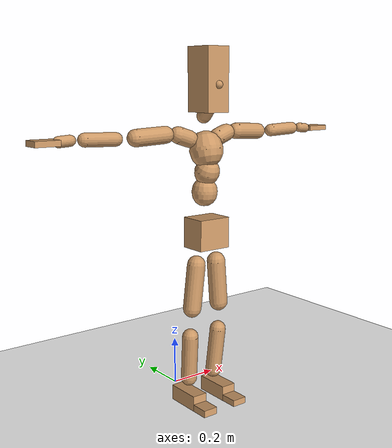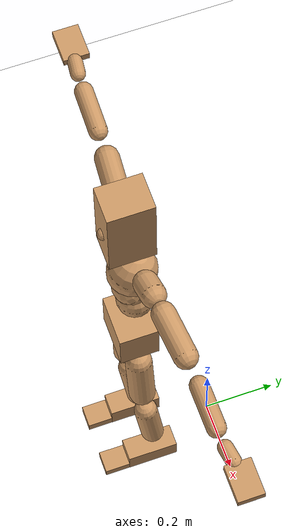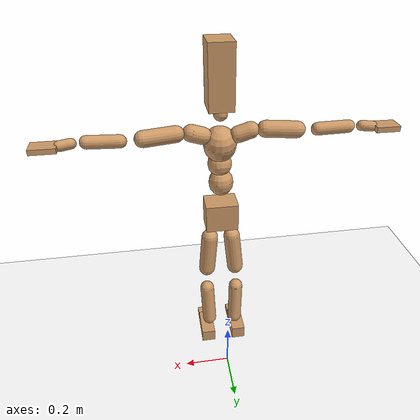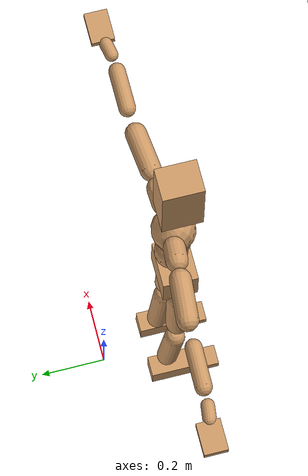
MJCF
<mujoco model="humanoid">
  <option integrator="implicitfast" />

  <visual>
    <global offwidth="1280" offheight="960" />
    <headlight active="1" ambient="0.34 0.34 0.34" diffuse="0.5 0.5 0.5" />
  </visual>

  <default>
    <joint damping="2" stiffness="2" armature="0.01" limited="true" solimplimit="0 .99 .01" />
    <geom condim="1" friction="0.7 0.005 0.0001" solimp=".99 .99 .003" solref="0.015 1" margin="0.001" rgba="0.8 0.6 .4 1" />
    <default class="smplcontact">
      <geom condim="3" friction="1. 0.005 0.0001" solref="0.015 1" solimp="0.98 0.98 0.001" priority="1" />
    </default>
    <default class="stiff_medium">
      <joint stiffness="10" />
    </default>
    <default class="stiff_medium_higher">
      <joint stiffness="50" />
    </default>
    <default class="stiff_high">
      <joint stiffness="100" />
    </default>
  </default>

  <asset>
    <texture type="skybox" builtin="gradient" rgb1="0.99 0.99 0.99" rgb2="0.608 0.828 0.892" width="100" />
    <texture builtin="flat" height="1278" mark="cross" markrgb="1 1 1" name="texgeom" random="0.01" rgb1="0.8 0.6 0.4" rgb2="0.8 0.6 0.4" type="cube" width="127" />
    <texture name="texplane" type="2d" builtin="checker" markrgb="1 1 1" rgb1="0.756 0.772 0.76" rgb2="0.6 0.6 0.6" width="100" height="100" />
    <material name="MatPlane" reflectance="0.5" texture="texplane" texrepeat="1 1" texuniform="true" />
    <material name="geom" texture="texgeom" texuniform="true" />
  </asset>

  <worldbody>
    <light name="tracking_light" pos="0 0 7" dir="0 0 -1" directional="true" cutoff="100" exponent="1" diffuse="1 1 1" specular="0.1 0.1 0.1" mode="trackcom" />
    <camera name="back" pos="0 3 2.4" xyaxes="-1 0 0 0 -1 2" mode="trackcom" />
    <camera name="side" pos="-3 0 2.4" xyaxes="0 -1 0 1 0 2" mode="trackcom" />
    <camera name="front_side" pos="-2.8 -2.8 0.8" xyaxes="0.5 -0.5 0 0.1 0.1 1" mode="trackcom" />
    <geom condim="3" name="floor" pos="0 0 0" rgba="1 1 1 1" size="100 100 .2" type="plane" material="MatPlane" />
    <body name="Pelvis" pos="-0.0018 -0.2233 0.719767" euler="90 0 0">
      <site name="Pelvis" size="0.01" />
      <freejoint name="Pelvis" />
      <geom type="box" pos="0 -0.0101158 -0.00355465" size="0.0690895 0.0603607 0.0536429" quat="1.0000 0.0000 0.0000 0.0000" density="3165.830099" name="Pelvis" />
      <body name="L_Hip" pos="0.0449179 -0.0764123 -0.00439484">
        <joint name="L_Hip_x" type="hinge" pos="0 0 0" axis="1 0 0" stiffness="10" range="-160.0 22.92" class="stiff_medium" damping="15" />
        <joint name="L_Hip_y" type="hinge" pos="0 0 0" axis="0 1 0" stiffness="10" range="-70.0 70.0" class="stiff_medium" damping="10" />
        <joint name="L_Hip_z" type="hinge" pos="0 0 0" axis="0 0 1" stiffness="10" range="-28.65 90.0" class="stiff_medium" damping="10" />
        <geom type="capsule" density="2040.816327" fromto="0.00530561 -0.057808 -0.000693556 0.0211062 -0.231383 -0.0027746" size="0.0366417" name="L_Hip" />
        <body name="L_Knee" pos="0.0264118 -0.289191 -0.00346816">
          <joint name="L_Knee_x" type="hinge" pos="0 0 0" axis="1 0 0" range="-5.16 171.89" damping="8" />
          <joint name="L_Knee_y" type="hinge" pos="0 0 0" axis="0 1 0" range="-4.58 6.88" damping="8" />
          <joint name="L_Knee_z" type="hinge" pos="0 0 0" axis="0 0 1" range="-6.88 4.58" damping="8" />
          <geom type="capsule" density="1234.567901" fromto="-0.00208683 -0.0613509 -0.0067171 -0.00840705 -0.245408 -0.026988" size="0.0322328" name="L_Knee" />
          <body name="L_Ankle" pos="-0.0104939 -0.306759 -0.0337051">
            <joint name="L_Ankle_x" type="hinge" pos="0 0 0" axis="1 0 0" range="-45.84 45.84" class="stiff_medium" damping="6" />
            <joint name="L_Ankle_y" type="hinge" pos="0 0 0" axis="0 1 0" range="-74.48 22.92" class="stiff_medium" damping="3" />
            <joint name="L_Ankle_z" type="hinge" pos="0 0 0" axis="0 0 1" range="-4.58 4.58" class="stiff_medium" damping="6" />
            <geom type="box" pos="0.0150588 -0.0154466 0.0203334" size="0.0312163 0.0299883 0.071419" quat="1.0000 0.0000 0.0000 0.0000" density="449.071558" name="L_Ankle" class="smplcontact" />
            <body name="L_Toe" pos="0.0170623 -0.0360635 0.100239">
              <joint name="L_Toe_x" type="hinge" pos="0 0 0" axis="1 0 0" range="-91.67 22.92" />
              <joint name="L_Toe_y" type="hinge" pos="0 0 0" axis="0 1 0" range="-4.58 4.58" />
              <joint name="L_Toe_z" type="hinge" pos="0 0 0" axis="0 0 1" range="-4.58 4.58" />
              <geom type="box" pos="-0.0019389 0.00355465 0.0208376" size="0.0308931 0.012926 0.0416751" quat="1.0000 0.0000 0.0000 0.0000" density="423.206892" name="L_Toe" class="smplcontact" />
            </body>
          </body>
        </body>
      </body>
      <body name="R_Hip" pos="-0.0437545 -0.0756599 -0.00277909">
        <joint name="R_Hip_x" type="hinge" pos="0 0 0" axis="1 0 0" stiffness="10" range="-160.0 22.92" class="stiff_medium" damping="15" />
        <joint name="R_Hip_y" type="hinge" pos="0 0 0" axis="0 1 0" stiffness="10" range="-70.0 70.0" class="stiff_medium" damping="10" />
        <joint name="R_Hip_z" type="hinge" pos="0 0 0" axis="0 0 1" stiffness="10" range="-90.0 28.65" class="stiff_medium" damping="10" />
        <geom type="capsule" density="2040.816327" fromto="-0.00592273 -0.0589644 -0.00138143 -0.0235731 -0.23593 -0.00546645" size="0.0361055" name="R_Hip" />
        <body name="R_Knee" pos="-0.0294958 -0.294895 -0.00684788">
          <joint name="R_Knee_x" type="hinge" pos="0 0 0" axis="1 0 0" range="-5.16 171.89" damping="8" />
          <joint name="R_Knee_y" type="hinge" pos="0 0 0" axis="0 1 0" range="-6.88 4.58" damping="8" />
          <joint name="R_Knee_z" type="hinge" pos="0 0 0" axis="0 0 1" range="-4.58 6.88" damping="8" />
          <geom type="capsule" density="1234.567901" fromto="0.00245506 -0.061431 -0.00654057 0.00970018 -0.245642 -0.0260408" size="0.0322328" name="R_Knee" />
          <body name="R_Ankle" pos="0.0121552 -0.307073 -0.0325813">
            <joint name="R_Ankle_x" type="hinge" pos="0 0 0" axis="1 0 0" range="-45.84 45.84" class="stiff_medium" damping="6" />
            <joint name="R_Ankle_y" type="hinge" pos="0 0 0" axis="0 1 0" range="-22.92 74.48" class="stiff_medium" damping="3" />
            <joint name="R_Ankle_z" type="hinge" pos="0 0 0" axis="0 0 1" range="-4.58 4.58" class="stiff_medium" damping="6" />
            <geom type="box" pos="-0.0137016 -0.0112456 0.0215097" size="0.0312163 0.0308931 0.0726794" quat="1.0000 0.0000 0.0000 0.0000" density="434.700981" name="R_Ankle" class="smplcontact" />
            <body name="R_Toe" pos="-0.016416 -0.031087 0.1036">
              <joint name="R_Toe_x" type="hinge" pos="0 0 0" axis="1 0 0" range="-91.67 22.92" />
              <joint name="R_Toe_y" type="hinge" pos="0 0 0" axis="0 1 0" range="-4.58 4.58" />
              <joint name="R_Toe_z" type="hinge" pos="0 0 0" axis="0 0 1" range="-4.58 4.58" />
              <geom type="box" pos="0.00271446 0.00290835 0.0190731" size="0.0309578 0.0139601 0.041423" quat="1.0000 0.0000 0.0000 0.0000" density="407.384095" name="R_Toe" class="smplcontact" />
            </body>
          </body>
        </body>
      </body>
      <body name="Torso" pos="-0.00161575 0.0911262 -0.0172562">
        <joint name="Torso_x" type="hinge" pos="0 0 0" axis="1 0 0" range="-25.78 57.3" class="stiff_medium" damping="15" />
        <joint name="Torso_y" type="hinge" pos="0 0 0" axis="0 1 0" range="-57.3 57.3" class="stiff_high" damping="20" />
        <joint name="Torso_z" type="hinge" pos="0 0 0" axis="0 0 1" range="-34.38 34.38" class="stiff_high" damping="20" />
        <geom type="capsule" density="2040.816327" fromto="0.00205522 0.0511345 0.000411043 0.00247572 0.062488 0.000495143" size="0.0500004" name="Torso" />
        <body name="Spine" pos="0.00453164 0.113707 0.000906328">
          <joint name="Spine_x" type="hinge" pos="0 0 0" axis="1 0 0" stiffness="10" range="-25.78 57.3" class="stiff_medium" damping="15" />
          <joint name="Spine_y" type="hinge" pos="0 0 0" axis="0 1 0" stiffness="10" range="-57.3 57.3" class="stiff_high" damping="8" />
          <joint name="Spine_z" type="hinge" pos="0 0 0" axis="0 0 1" stiffness="20" range="-34.38 34.38" class="stiff_high" damping="12" />
          <geom type="capsule" density="2040.816327" fromto="0.000540441 0.0199957 0.0096301 0.000624541 0.024453 0.0118167" size="0.0490901" name="Spine" />
          <body name="Chest" pos="0.00116498 0.0444487 0.0214468">
            <joint name="Chest_x" type="hinge" pos="0 0 0" axis="1 0 0" stiffness="10" range="-25.78 57.3" class="stiff_medium" damping="15" />
            <joint name="Chest_y" type="hinge" pos="0 0 0" axis="0 1 0" stiffness="10" range="-57.3 57.3" class="stiff_high" damping="8" />
            <joint name="Chest_z" type="hinge" pos="0 0 0" axis="0 0 1" stiffness="20" range="-34.38 34.38" class="stiff_high" damping="12" />
            <geom type="capsule" density="2040.816327" fromto="-0.000671262 0.0573421 -0.0146057 -0.000755362 0.0700412 -0.0178856" size="0.06515" name="Chest" />
            <body name="Neck" pos="-0.00208707 0.179321 -0.0382875">
              <joint name="Neck_x" type="hinge" pos="0 0 0" axis="1 0 0" range="-28.65 57.3" class="stiff_medium_higher" damping="10" />
              <joint name="Neck_y" type="hinge" pos="0 0 0" axis="0 1 0" range="-40.11 40.11" class="stiff_medium_higher" damping="10" />
              <joint name="Neck_z" type="hinge" pos="0 0 0" axis="0 0 1" range="-40.11 40.11" class="stiff_medium_higher" damping="10" />
              <geom type="capsule" density="1000" fromto="0.000846802 0.0109257 0.00865014 0.0034515 0.0436944 0.034529" size="0.0283182" name="Neck" />
              <body name="Head" pos="0.00436259 0.0546118 0.0431077">
                <joint name="Head_x" type="hinge" pos="0 0 0" axis="1 0 0" range="-28.65 57.3" class="stiff_medium_higher" damping="2" />
                <joint name="Head_y" type="hinge" pos="0 0 0" axis="0 1 0" range="-40.11 40.11" class="stiff_medium_higher" damping="2" />
                <joint name="Head_z" type="hinge" pos="0 0 0" axis="0 0 1" range="-40.11 40.11" class="stiff_medium_higher" damping="2" />
                <geom type="box" pos="-0.00339612 0.0916363 -0.00937976" size="0.0490012 0.120717 0.0614536" quat="1.0000 0.0000 0.0000 0.0000" density="1018.069894" name="Head" />
                <geom type="capsule" name="nose" size="0.016172 0.008086" pos="0 0.0732254 0.04043" quat="1 0 0 0" mass="0" contype="0" conaffinity="0" />
              </body>
            </body>
            <body name="L_Thorax" pos="0.0510818 0.102378 -0.0281766">
              <joint name="L_Thorax_x" type="hinge" pos="0 0 0" axis="1 0 0" range="-10.89 4.58" class="stiff_medium_higher" damping="20" />
              <joint name="L_Thorax_y" type="hinge" pos="0 0 0" axis="0 1 0" range="-28.65 17.19" class="stiff_medium_higher" damping="20" />
              <joint name="L_Thorax_z" type="hinge" pos="0 0 0" axis="0 0 1" range="-31.51 40.11" class="stiff_medium_higher" damping="20" />
              <geom type="capsule" density="1000" fromto="0.0151235 0.00506887 -0.00148945 0.0604924 0.0202749 -0.00589339" size="0.033469" name="L_Thorax" />
              <body name="L_Shoulder" pos="0.0756159 0.0253438 -0.00738284">
                <joint name="L_Shoulder_x" type="hinge" pos="0 0 0" axis="1 0 0" range="-97.4 97.4" class="stiff_medium" damping="6" />
                <joint name="L_Shoulder_y" type="hinge" pos="0 0 0" axis="0 1 0" range="-108.86 80.21" class="stiff_medium" damping="6" />
                <joint name="L_Shoulder_z" type="hinge" pos="0 0 0" axis="0 0 1" range="-97.4 85.94" class="stiff_medium" damping="6" />
                <geom type="capsule" density="1000" fromto="0.0414727 -0.00206524 -0.00439435 0.165969 -0.00813822 -0.0175791" size="0.0319351" name="L_Shoulder" />
                <body name="L_Elbow" pos="0.207441 -0.0102035 -0.0219734">
                  <joint name="L_Elbow_x" type="hinge" pos="0 0 0" axis="1 0 0" range="-17.19 4.58" damping="5" />
                  <joint name="L_Elbow_y" type="hinge" pos="0 0 0" axis="0 1 0" range="-180.0 17.19" damping="5" />
                  <joint name="L_Elbow_z" type="hinge" pos="0 0 0" axis="0 0 1" range="-100.84 4.58" damping="5" />
                  <geom type="capsule" density="1000" fromto="0.039794 0.0014379 -0.000165804 0.159336 0.00575291 -0.000725157" size="0.0250169" name="L_Elbow" />
                  <body name="L_Wrist" pos="0.19913 0.00719081 -0.000952732">
                    <joint name="L_Wrist_x" type="hinge" pos="0 0 0" axis="1 0 0" range="-180.0 22.92" />
                    <joint name="L_Wrist_y" type="hinge" pos="0 0 0" axis="0 1 0" range="-17.19 17.19" />
                    <joint name="L_Wrist_z" type="hinge" pos="0 0 0" axis="0 0 1" range="-22.92 22.92" />
                    <geom type="capsule" density="1000" fromto="0.0134239 -0.00128451 -0.00239713 0.0536973 -0.00519998 -0.00958881" size="0.0196429" name="L_Wrist" class="smplcontact" />
                    <body name="L_Hand" pos="0.0671198 -0.00654613 -0.0119239">
                      <joint name="L_Hand_x" type="hinge" pos="0 0 0" axis="1 0 0" range="-17.19 17.19" />
                      <joint name="L_Hand_y" type="hinge" pos="0 0 0" axis="0 1 0" range="-51.57 51.57" />
                      <joint name="L_Hand_z" type="hinge" pos="0 0 0" axis="0 0 1" range="-91.67 91.67" />
                      <geom type="box" pos="0.0412158 0.0006463 -0.00374854" size="0.0489072 0.0102115 0.0347709" quat="1.0000 0.0000 0.0000 0.0000" density="400.552564" name="L_Hand" class="smplcontact" />
                    </body>
                  </body>
                </body>
              </body>
            </body>
            <body name="R_Thorax" pos="-0.0533395 0.100372 -0.0310713">
              <joint name="R_Thorax_x" type="hinge" pos="0 0 0" axis="1 0 0" range="-10.89 4.58" class="stiff_medium_higher" damping="20" />
              <joint name="R_Thorax_y" type="hinge" pos="0 0 0" axis="0 1 0" range="-17.19 28.65" class="stiff_medium_higher" damping="20" />
              <joint name="R_Thorax_z" type="hinge" pos="0 0 0" axis="0 0 1" range="-40.11 31.51" class="stiff_medium_higher" damping="20" />
              <geom type="capsule" density="1000" fromto="-0.0159534 0.00540088 -0.00150191 -0.0638151 0.0216041 -0.00607204" size="0.0328266" name="R_Thorax" />
              <body name="R_Shoulder" pos="-0.0797741 0.0270711 -0.00757449">
                <joint name="R_Shoulder_x" type="hinge" pos="0 0 0" axis="1 0 0" range="-97.4 97.4" class="stiff_medium" damping="6" />
                <joint name="R_Shoulder_y" type="hinge" pos="0 0 0" axis="0 1 0" range="-80.21 108.86" class="stiff_medium" damping="6" />
                <joint name="R_Shoulder_z" type="hinge" pos="0 0 0" axis="0 0 1" range="-85.94 97.4" class="stiff_medium" damping="6" />
                <geom type="capsule" density="1000" fromto="-0.0405141 -0.00215087 -0.00342904 -0.162213 -0.00854348 -0.0136572" size="0.0327999" name="R_Shoulder" />
                <body name="R_Elbow" pos="-0.202726 -0.0106325 -0.0170862">
                  <joint name="R_Elbow_x" type="hinge" pos="0 0 0" axis="1 0 0" range="-17.19 4.58" damping="5" />
                  <joint name="R_Elbow_y" type="hinge" pos="0 0 0" axis="0 1 0" range="-17.19 180.0" damping="5" />
                  <joint name="R_Elbow_z" type="hinge" pos="0 0 0" axis="0 0 1" range="-4.58 100.84" damping="5" />
                  <geom type="capsule" density="1000" fromto="-0.0408331 0.0012668 -0.000879251 -0.163172 0.00494255 -0.0035162" size="0.0252022" name="R_Elbow" />
                  <body name="R_Wrist" pos="-0.204005 0.00620937 -0.00445723">
                    <joint name="R_Wrist_x" type="hinge" pos="0 0 0" axis="1 0 0" range="-180.0 22.92" />
                    <joint name="R_Wrist_y" type="hinge" pos="0 0 0" axis="0 1 0" range="-17.19 17.19" />
                    <joint name="R_Wrist_z" type="hinge" pos="0 0 0" axis="0 0 1" range="-22.92 22.92" />
                    <geom type="capsule" density="1000" fromto="-0.0135048 -0.000964526 -0.00167133 -0.0540978 -0.00392111 -0.00662559" size="0.020137" name="R_Wrist" class="smplcontact" />
                    <body name="R_Hand" pos="-0.0676004 -0.00488547 -0.00823488">
                      <joint name="R_Hand_x" type="hinge" pos="0 0 0" axis="1 0 0" range="-17.19 17.19" />
                      <joint name="R_Hand_y" type="hinge" pos="0 0 0" axis="0 1 0" range="-51.57 51.57" />
                      <joint name="R_Hand_z" type="hinge" pos="0 0 0" axis="0 0 1" range="-91.67 91.67" />
                      <geom type="box" pos="-0.0386242 -0.00058167 -0.00510577" size="0.0475696 0.0105993 0.035288" quat="1.0000 0.0000 0.0000 0.0000" density="403.679611" name="R_Hand" class="smplcontact" />
                    </body>
                  </body>
                </body>
              </body>
            </body>
          </body>
        </body>
      </body>
    </body>
  </worldbody>
  <actuator>
    <general name="L_Hip_x" joint="L_Hip_x" biastype="affine" gainprm="287.33006409732246" biasprm="-215.3247604770444 -180 -2.0" ctrllimited="true" ctrlrange="-1 1" forcerange="-360 360" />
    <general name="L_Hip_y" joint="L_Hip_y" biastype="affine" gainprm="219.9114857512855" biasprm="0.0 -180 -2.0" ctrllimited="true" ctrlrange="-1 1" forcerange="-360 360" />
    <general name="L_Hip_z" joint="L_Hip_z" biastype="affine" gainprm="186.3749841742145" biasprm="96.3683546488669 -180 -2.0" ctrllimited="true" ctrlrange="-1 1" forcerange="-360 360" />
    <general name="L_Knee_x" joint="L_Knee_x" biastype="affine" gainprm="278.10948965903646" biasprm="261.8988715665131 -180 -2.0" ctrllimited="true" ctrlrange="-1 1" forcerange="-360 360" />
    <general name="L_Knee_y" joint="L_Knee_y" biastype="affine" gainprm="18.001325905069514" biasprm="3.612831551628262 -180 -2.0" ctrllimited="true" ctrlrange="-1 1" forcerange="-360 360" />
    <general name="L_Knee_z" joint="L_Knee_z" biastype="affine" gainprm="18.001325905069514" biasprm="-3.612831551628262 -180 -2.0" ctrllimited="true" ctrlrange="-1 1" forcerange="-360 360" />
    <general name="L_Ankle_x" joint="L_Ankle_x" biastype="affine" gainprm="72.00530362027807" biasprm="0.0 -90 -2.0" ctrllimited="true" ctrlrange="-1 1" forcerange="-180 180" />
    <general name="L_Ankle_y" joint="L_Ankle_y" biastype="affine" gainprm="76.49778111491148" biasprm="-40.49512930477244 -90 -2.0" ctrllimited="true" ctrlrange="-1 1" forcerange="-180 180" />
    <general name="L_Ankle_z" joint="L_Ankle_z" biastype="affine" gainprm="7.1942471767206255" biasprm="0.0 -90 -2.0" ctrllimited="true" ctrlrange="-1 1" forcerange="-180 180" />
    <general name="L_Toe_x" joint="L_Toe_x" biastype="affine" gainprm="71.99902043497087" biasprm="-43.19689898685965 -72 -0.8" ctrllimited="true" ctrlrange="-1 1" forcerange="-144 144" />
    <general name="L_Toe_y" joint="L_Toe_y" biastype="affine" gainprm="5.755397741376501" biasprm="0.0 -72 -0.8" ctrllimited="true" ctrlrange="-1 1" forcerange="-144 144" />
    <general name="L_Toe_z" joint="L_Toe_z" biastype="affine" gainprm="5.755397741376501" biasprm="0.0 -72 -0.8" ctrllimited="true" ctrlrange="-1 1" forcerange="-144 144" />
    <general name="R_Hip_x" joint="R_Hip_x" biastype="affine" gainprm="287.33006409732246" biasprm="-215.3247604770444 -180 -2.0" ctrllimited="true" ctrlrange="-1 1" forcerange="-360 360" />
    <general name="R_Hip_y" joint="R_Hip_y" biastype="affine" gainprm="219.9114857512855" biasprm="0.0 -180 -2.0" ctrllimited="true" ctrlrange="-1 1" forcerange="-360 360" />
    <general name="R_Hip_z" joint="R_Hip_z" biastype="affine" gainprm="186.3749841742145" biasprm="-96.3683546488669 -180 -2.0" ctrllimited="true" ctrlrange="-1 1" forcerange="-360 360" />
    <general name="R_Knee_x" joint="R_Knee_x" biastype="affine" gainprm="278.10948965903646" biasprm="261.8988715665131 -180 -2.0" ctrllimited="true" ctrlrange="-1 1" forcerange="-360 360" />
    <general name="R_Knee_y" joint="R_Knee_y" biastype="affine" gainprm="18.001325905069514" biasprm="-3.612831551628262 -180 -2.0" ctrllimited="true" ctrlrange="-1 1" forcerange="-360 360" />
    <general name="R_Knee_z" joint="R_Knee_z" biastype="affine" gainprm="18.001325905069514" biasprm="3.612831551628262 -180 -2.0" ctrllimited="true" ctrlrange="-1 1" forcerange="-360 360" />
    <general name="R_Ankle_x" joint="R_Ankle_x" biastype="affine" gainprm="72.00530362027807" biasprm="0.0 -90 -2.0" ctrllimited="true" ctrlrange="-1 1" forcerange="-180 180" />
    <general name="R_Ankle_y" joint="R_Ankle_y" biastype="affine" gainprm="76.49778111491148" biasprm="40.49512930477244 -90 -2.0" ctrllimited="true" ctrlrange="-1 1" forcerange="-180 180" />
    <general name="R_Ankle_z" joint="R_Ankle_z" biastype="affine" gainprm="7.1942471767206255" biasprm="0.0 -90 -2.0" ctrllimited="true" ctrlrange="-1 1" forcerange="-180 180" />
    <general name="R_Toe_x" joint="R_Toe_x" biastype="affine" gainprm="71.99902043497087" biasprm="-43.19689898685965 -72 -0.8" ctrllimited="true" ctrlrange="-1 1" forcerange="-144 144" />
    <general name="R_Toe_y" joint="R_Toe_y" biastype="affine" gainprm="5.755397741376501" biasprm="0.0 -72 -0.8" ctrllimited="true" ctrlrange="-1 1" forcerange="-144 144" />
    <general name="R_Toe_z" joint="R_Toe_z" biastype="affine" gainprm="5.755397741376501" biasprm="0.0 -72 -0.8" ctrllimited="true" ctrlrange="-1 1" forcerange="-144 144" />
    <general name="Torso_x" joint="Torso_x" biastype="affine" gainprm="174.00234510682668" biasprm="66.0153336274335 -240 -4.0" ctrllimited="true" ctrlrange="-1 1" forcerange="-360 360" />
    <general name="Torso_y" joint="Torso_y" biastype="affine" gainprm="240.0176787342602" biasprm="0.0 -240 -4.0" ctrllimited="true" ctrlrange="-1 1" forcerange="-360 360" />
    <general name="Torso_z" joint="Torso_z" biastype="affine" gainprm="144.01060724055614" biasprm="0.0 -240 -4.0" ctrllimited="true" ctrlrange="-1 1" forcerange="-360 360" />
    <general name="Spine_x" joint="Spine_x" biastype="affine" gainprm="174.00234510682668" biasprm="66.0153336274335 -240 -4.0" ctrllimited="true" ctrlrange="-1 1" forcerange="-360 360" />
    <general name="Spine_y" joint="Spine_y" biastype="affine" gainprm="240.0176787342602" biasprm="0.0 -240 -4.0" ctrllimited="true" ctrlrange="-1 1" forcerange="-360 360" />
    <general name="Spine_z" joint="Spine_z" biastype="affine" gainprm="144.01060724055614" biasprm="0.0 -240 -4.0" ctrllimited="true" ctrlrange="-1 1" forcerange="-360 360" />
    <general name="Chest_x" joint="Chest_x" biastype="affine" gainprm="174.00234510682668" biasprm="66.0153336274335 -240 -4.0" ctrllimited="true" ctrlrange="-1 1" forcerange="-360 360" />
    <general name="Chest_y" joint="Chest_y" biastype="affine" gainprm="240.0176787342602" biasprm="0.0 -240 -4.0" ctrllimited="true" ctrlrange="-1 1" forcerange="-360 360" />
    <general name="Chest_z" joint="Chest_z" biastype="affine" gainprm="144.01060724055614" biasprm="0.0 -240 -4.0" ctrllimited="true" ctrlrange="-1 1" forcerange="-360 360" />
    <general name="Neck_x" joint="Neck_x" biastype="affine" gainprm="27.00198885760427" biasprm="9.000662952534757 -36 -0.8" ctrllimited="true" ctrlrange="-1 1" forcerange="-72 72" />
    <general name="Neck_y" joint="Neck_y" biastype="affine" gainprm="25.20185626709732" biasprm="0.0 -36 -0.8" ctrllimited="true" ctrlrange="-1 1" forcerange="-72 72" />
    <general name="Neck_z" joint="Neck_z" biastype="affine" gainprm="25.20185626709732" biasprm="0.0 -36 -0.8" ctrllimited="true" ctrlrange="-1 1" forcerange="-72 72" />
    <general name="Head_x" joint="Head_x" biastype="affine" gainprm="18.001325905069514" biasprm="6.000441968356505 -24 -0.8" ctrllimited="true" ctrlrange="-1 1" forcerange="-48 48" />
    <general name="Head_y" joint="Head_y" biastype="affine" gainprm="16.801237511398213" biasprm="0.0 -24 -0.8" ctrllimited="true" ctrlrange="-1 1" forcerange="-48 48" />
    <general name="Head_z" joint="Head_z" biastype="affine" gainprm="16.801237511398213" biasprm="0.0 -24 -0.8" ctrllimited="true" ctrlrange="-1 1" forcerange="-48 48" />
    <general name="L_Thorax_x" joint="L_Thorax_x" biastype="affine" gainprm="16.200146117011364" biasprm="-6.6078165480505335 -120 -1.6" ctrllimited="true" ctrlrange="-1 1" forcerange="-240 240" />
    <general name="L_Thorax_y" joint="L_Thorax_y" biastype="affine" gainprm="48.00353574685204" biasprm="-12.00088393671301 -120 -1.6" ctrllimited="true" ctrlrange="-1 1" forcerange="-240 240" />
    <general name="L_Thorax_z" joint="L_Thorax_z" biastype="affine" gainprm="75.00028861670033" biasprm="9.00589894029074 -120 -1.6" ctrllimited="true" ctrlrange="-1 1" forcerange="-240 240" />
    <general name="L_Shoulder_x" joint="L_Shoulder_x" biastype="affine" gainprm="81.5976331892389" biasprm="0.0 -48 -1.6" ctrllimited="true" ctrlrange="-1 1" forcerange="-96 96" />
    <general name="L_Shoulder_y" joint="L_Shoulder_y" biastype="affine" gainprm="79.19745640189629" biasprm="-12.00088393671301 -48 -1.6" ctrllimited="true" ctrlrange="-1 1" forcerange="-96 96" />
    <general name="L_Shoulder_z" joint="L_Shoulder_z" biastype="affine" gainprm="76.79727961455369" biasprm="-4.800353574685214 -48 -1.6" ctrllimited="true" ctrlrange="-1 1" forcerange="-96 96" />
    <general name="L_Elbow_x" joint="L_Elbow_x" biastype="affine" gainprm="13.67849441372996" biasprm="-7.923096672353461 -72 -0.8" ctrllimited="true" ctrlrange="-1 1" forcerange="-144 144" />
    <general name="L_Elbow_y" joint="L_Elbow_y" biastype="affine" gainprm="123.89813107227425" biasprm="-102.29653998619085 -72 -0.8" ctrllimited="true" ctrlrange="-1 1" forcerange="-144 144" />
    <general name="L_Elbow_z" joint="L_Elbow_z" biastype="affine" gainprm="66.23733950828719" biasprm="-60.4819417669107 -72 -0.8" ctrllimited="true" ctrlrange="-1 1" forcerange="-144 144" />
    <general name="L_Wrist_x" joint="L_Wrist_x" biastype="affine" gainprm="21.24973270888136" biasprm="-16.449379134196157 -12 -0.8" ctrllimited="true" ctrlrange="-1 1" forcerange="-24 24" />
    <general name="L_Wrist_y" joint="L_Wrist_y" biastype="affine" gainprm="3.6002651810139037" biasprm="0.0 -12 -0.8" ctrllimited="true" ctrlrange="-1 1" forcerange="-24 24" />
    <general name="L_Wrist_z" joint="L_Wrist_z" biastype="affine" gainprm="4.800353574685205" biasprm="0.0 -12 -0.8" ctrllimited="true" ctrlrange="-1 1" forcerange="-24 24" />
    <general name="L_Hand_x" joint="L_Hand_x" biastype="affine" gainprm="3.6002651810139037" biasprm="0.0 -12 -0.8" ctrllimited="true" ctrlrange="-1 1" forcerange="-24 24" />
    <general name="L_Hand_y" joint="L_Hand_y" biastype="affine" gainprm="10.800795543041708" biasprm="0.0 -12 -0.8" ctrllimited="true" ctrlrange="-1 1" forcerange="-24 24" />
    <general name="L_Hand_z" joint="L_Hand_z" biastype="affine" gainprm="19.199319903638422" biasprm="0.0 -12 -0.8" ctrllimited="true" ctrlrange="-1 1" forcerange="-24 24" />
    <general name="R_Thorax_x" joint="R_Thorax_x" biastype="affine" gainprm="16.200146117011364" biasprm="-6.6078165480505335 -120 -1.6" ctrllimited="true" ctrlrange="-1 1" forcerange="-240 240" />
    <general name="R_Thorax_y" joint="R_Thorax_y" biastype="affine" gainprm="48.00353574685204" biasprm="12.000883936713002 -120 -1.6" ctrllimited="true" ctrlrange="-1 1" forcerange="-240 240" />
    <general name="R_Thorax_z" joint="R_Thorax_z" biastype="affine" gainprm="75.00028861670033" biasprm="-9.00589894029074 -120 -1.6" ctrllimited="true" ctrlrange="-1 1" forcerange="-240 240" />
    <general name="R_Shoulder_x" joint="R_Shoulder_x" biastype="affine" gainprm="81.5976331892389" biasprm="0.0 -48 -1.6" ctrllimited="true" ctrlrange="-1 1" forcerange="-96 96" />
    <general name="R_Shoulder_y" joint="R_Shoulder_y" biastype="affine" gainprm="79.19745640189629" biasprm="12.00088393671301 -48 -1.6" ctrllimited="true" ctrlrange="-1 1" forcerange="-96 96" />
    <general name="R_Shoulder_z" joint="R_Shoulder_z" biastype="affine" gainprm="76.79727961455369" biasprm="4.800353574685204 -48 -1.6" ctrllimited="true" ctrlrange="-1 1" forcerange="-96 96" />
    <general name="R_Elbow_x" joint="R_Elbow_x" biastype="affine" gainprm="13.67849441372996" biasprm="-7.923096672353461 -72 -0.8" ctrllimited="true" ctrlrange="-1 1" forcerange="-144 144" />
    <general name="R_Elbow_y" joint="R_Elbow_y" biastype="affine" gainprm="123.89813107227425" biasprm="102.29653998619085 -72 -0.8" ctrllimited="true" ctrlrange="-1 1" forcerange="-144 144" />
    <general name="R_Elbow_z" joint="R_Elbow_z" biastype="affine" gainprm="66.23733950828719" biasprm="60.481941766910694 -72 -0.8" ctrllimited="true" ctrlrange="-1 1" forcerange="-144 144" />
    <general name="R_Wrist_x" joint="R_Wrist_x" biastype="affine" gainprm="21.24973270888136" biasprm="-16.449379134196157 -12 -0.8" ctrllimited="true" ctrlrange="-1 1" forcerange="-24 24" />
    <general name="R_Wrist_y" joint="R_Wrist_y" biastype="affine" gainprm="3.6002651810139037" biasprm="0.0 -12 -0.8" ctrllimited="true" ctrlrange="-1 1" forcerange="-24 24" />
    <general name="R_Wrist_z" joint="R_Wrist_z" biastype="affine" gainprm="4.800353574685205" biasprm="0.0 -12 -0.8" ctrllimited="true" ctrlrange="-1 1" forcerange="-24 24" />
    <general name="R_Hand_x" joint="R_Hand_x" biastype="affine" gainprm="3.6002651810139037" biasprm="0.0 -12 -0.8" ctrllimited="true" ctrlrange="-1 1" forcerange="-24 24" />
    <general name="R_Hand_y" joint="R_Hand_y" biastype="affine" gainprm="10.800795543041708" biasprm="0.0 -12 -0.8" ctrllimited="true" ctrlrange="-1 1" forcerange="-24 24" />
    <general name="R_Hand_z" joint="R_Hand_z" biastype="affine" gainprm="19.199319903638422" biasprm="0.0 -12 -0.8" ctrllimited="true" ctrlrange="-1 1" forcerange="-24 24" />
  </actuator>
  <contact>
    <exclude body1="Torso" body2="Chest" />
    <exclude body1="Head" body2="Chest" />
    <exclude body1="R_Knee" body2="R_Toe" />
    <exclude body1="R_Knee" body2="L_Ankle" />
    <exclude body1="R_Knee" body2="L_Toe" />
    <exclude body1="L_Knee" body2="L_Toe" />
    <exclude body1="L_Knee" body2="R_Ankle" />
    <exclude body1="L_Knee" body2="R_Toe" />
    <exclude body1="L_Shoulder" body2="Chest" />
    <exclude body1="R_Shoulder" body2="Chest" />
  </contact>
  <sensor>
    <framelinvel name="sensor_Pelvis_framelinvel" objtype="xbody" objname="Pelvis" />
    <framelinvel name="sensor_L_Hip_framelinvel" objtype="xbody" objname="L_Hip" />
    <framelinvel name="sensor_L_Knee_framelinvel" objtype="xbody" objname="L_Knee" />
    <framelinvel name="sensor_L_Ankle_framelinvel" objtype="xbody" objname="L_Ankle" />
    <framelinvel name="sensor_L_Toe_framelinvel" objtype="xbody" objname="L_Toe" />
    <framelinvel name="sensor_R_Hip_framelinvel" objtype="xbody" objname="R_Hip" />
    <framelinvel name="sensor_R_Knee_framelinvel" objtype="xbody" objname="R_Knee" />
    <framelinvel name="sensor_R_Ankle_framelinvel" objtype="xbody" objname="R_Ankle" />
    <framelinvel name="sensor_R_Toe_framelinvel" objtype="xbody" objname="R_Toe" />
    <framelinvel name="sensor_Torso_framelinvel" objtype="xbody" objname="Torso" />
    <framelinvel name="sensor_Spine_framelinvel" objtype="xbody" objname="Spine" />
    <framelinvel name="sensor_Chest_framelinvel" objtype="xbody" objname="Chest" />
    <framelinvel name="sensor_Neck_framelinvel" objtype="xbody" objname="Neck" />
    <framelinvel name="sensor_Head_framelinvel" objtype="xbody" objname="Head" />
    <framelinvel name="sensor_L_Thorax_framelinvel" objtype="xbody" objname="L_Thorax" />
    <framelinvel name="sensor_L_Shoulder_framelinvel" objtype="xbody" objname="L_Shoulder" />
    <framelinvel name="sensor_L_Elbow_framelinvel" objtype="xbody" objname="L_Elbow" />
    <framelinvel name="sensor_L_Wrist_framelinvel" objtype="xbody" objname="L_Wrist" />
    <framelinvel name="sensor_L_Hand_framelinvel" objtype="xbody" objname="L_Hand" />
    <framelinvel name="sensor_R_Thorax_framelinvel" objtype="xbody" objname="R_Thorax" />
    <framelinvel name="sensor_R_Shoulder_framelinvel" objtype="xbody" objname="R_Shoulder" />
    <framelinvel name="sensor_R_Elbow_framelinvel" objtype="xbody" objname="R_Elbow" />
    <framelinvel name="sensor_R_Wrist_framelinvel" objtype="xbody" objname="R_Wrist" />
    <framelinvel name="sensor_R_Hand_framelinvel" objtype="xbody" objname="R_Hand" />
    <frameangvel name="sensor_Pelvis_frameangvel" objtype="xbody" objname="Pelvis" />
    <frameangvel name="sensor_L_Hip_frameangvel" objtype="xbody" objname="L_Hip" />
    <frameangvel name="sensor_L_Knee_frameangvel" objtype="xbody" objname="L_Knee" />
    <frameangvel name="sensor_L_Ankle_frameangvel" objtype="xbody" objname="L_Ankle" />
    <frameangvel name="sensor_L_Toe_frameangvel" objtype="xbody" objname="L_Toe" />
    <frameangvel name="sensor_R_Hip_frameangvel" objtype="xbody" objname="R_Hip" />
    <frameangvel name="sensor_R_Knee_frameangvel" objtype="xbody" objname="R_Knee" />
    <frameangvel name="sensor_R_Ankle_frameangvel" objtype="xbody" objname="R_Ankle" />
    <frameangvel name="sensor_R_Toe_frameangvel" objtype="xbody" objname="R_Toe" />
    <frameangvel name="sensor_Torso_frameangvel" objtype="xbody" objname="Torso" />
    <frameangvel name="sensor_Spine_frameangvel" objtype="xbody" objname="Spine" />
    <frameangvel name="sensor_Chest_frameangvel" objtype="xbody" objname="Chest" />
    <frameangvel name="sensor_Neck_frameangvel" objtype="xbody" objname="Neck" />
    <frameangvel name="sensor_Head_frameangvel" objtype="xbody" objname="Head" />
    <frameangvel name="sensor_L_Thorax_frameangvel" objtype="xbody" objname="L_Thorax" />
    <frameangvel name="sensor_L_Shoulder_frameangvel" objtype="xbody" objname="L_Shoulder" />
    <frameangvel name="sensor_L_Elbow_frameangvel" objtype="xbody" objname="L_Elbow" />
    <frameangvel name="sensor_L_Wrist_frameangvel" objtype="xbody" objname="L_Wrist" />
    <frameangvel name="sensor_L_Hand_frameangvel" objtype="xbody" objname="L_Hand" />
    <frameangvel name="sensor_R_Thorax_frameangvel" objtype="xbody" objname="R_Thorax" />
    <frameangvel name="sensor_R_Shoulder_frameangvel" objtype="xbody" objname="R_Shoulder" />
    <frameangvel name="sensor_R_Elbow_frameangvel" objtype="xbody" objname="R_Elbow" />
    <frameangvel name="sensor_R_Wrist_frameangvel" objtype="xbody" objname="R_Wrist" />
    <frameangvel name="sensor_R_Hand_frameangvel" objtype="xbody" objname="R_Hand" />
    <subtreelinvel name="Chest_subtreelinvel" body="Chest" />
    <gyro name="Pelvis_gyro" site="Pelvis" />
  </sensor>
</mujoco>
